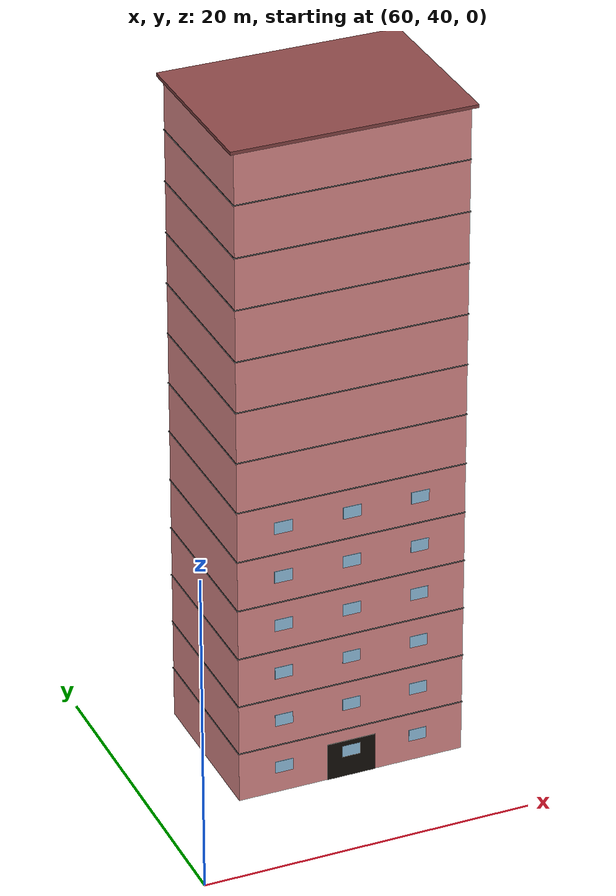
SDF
<sdf version="1.7">
 <world name="campus_regional">
  <model name="dormitory_4">
   <static>true</static>
   <pose>72.0 52.0 0 0 0 0</pose>
   <link name="body">
    <visual name="body">
     <pose>0 0 20.800 0 0 0</pose>
     <geometry><box><size>14.000 10.000 41.600</size></box></geometry>
     <material><ambient>0.920 0.580 0.580 1.000</ambient><diffuse>0.920 0.580 0.580 1.000</diffuse></material>
    </visual>
    <collision name="body_collision">
     <pose>0 0 20.800 0 0 0</pose>
     <geometry><box><size>14.000 10.000 41.600</size></box></geometry>
    </collision>
    <visual name="roof">
     <pose>0 0 41.700 0 0 0</pose>
     <geometry><box><size>14.600 10.600 0.200</size></box></geometry>
     <material><ambient>0.550 0.280 0.280 1.000</ambient><diffuse>0.550 0.280 0.280 1.000</diffuse></material>
    </visual>
    <visual name="floor_sep_n_1">
     <pose>0 5.018 3.200 0 0 0</pose>
     <geometry><box><size>14.100 0.035 0.060</size></box></geometry>
     <material><ambient>0.080 0.080 0.080 1.000</ambient><diffuse>0.080 0.080 0.080 1.000</diffuse></material>
    </visual>
    <visual name="floor_sep_s_1">
     <pose>0 -5.018 3.200 0 0 0</pose>
     <geometry><box><size>14.100 0.035 0.060</size></box></geometry>
     <material><ambient>0.080 0.080 0.080 1.000</ambient><diffuse>0.080 0.080 0.080 1.000</diffuse></material>
    </visual>
    <visual name="floor_sep_e_1">
     <pose>7.018 0 3.200 0 0 0</pose>
     <geometry><box><size>0.035 10.100 0.060</size></box></geometry>
     <material><ambient>0.080 0.080 0.080 1.000</ambient><diffuse>0.080 0.080 0.080 1.000</diffuse></material>
    </visual>
    <visual name="floor_sep_w_1">
     <pose>-7.018 0 3.200 0 0 0</pose>
     <geometry><box><size>0.035 10.100 0.060</size></box></geometry>
     <material><ambient>0.080 0.080 0.080 1.000</ambient><diffuse>0.080 0.080 0.080 1.000</diffuse></material>
    </visual>
    <visual name="floor_sep_n_2">
     <pose>0 5.018 6.400 0 0 0</pose>
     <geometry><box><size>14.100 0.035 0.060</size></box></geometry>
     <material><ambient>0.080 0.080 0.080 1.000</ambient><diffuse>0.080 0.080 0.080 1.000</diffuse></material>
    </visual>
    <visual name="floor_sep_s_2">
     <pose>0 -5.018 6.400 0 0 0</pose>
     <geometry><box><size>14.100 0.035 0.060</size></box></geometry>
     <material><ambient>0.080 0.080 0.080 1.000</ambient><diffuse>0.080 0.080 0.080 1.000</diffuse></material>
    </visual>
    <visual name="floor_sep_e_2">
     <pose>7.018 0 6.400 0 0 0</pose>
     <geometry><box><size>0.035 10.100 0.060</size></box></geometry>
     <material><ambient>0.080 0.080 0.080 1.000</ambient><diffuse>0.080 0.080 0.080 1.000</diffuse></material>
    </visual>
    <visual name="floor_sep_w_2">
     <pose>-7.018 0 6.400 0 0 0</pose>
     <geometry><box><size>0.035 10.100 0.060</size></box></geometry>
     <material><ambient>0.080 0.080 0.080 1.000</ambient><diffuse>0.080 0.080 0.080 1.000</diffuse></material>
    </visual>
    <visual name="floor_sep_n_3">
     <pose>0 5.018 9.600 0 0 0</pose>
     <geometry><box><size>14.100 0.035 0.060</size></box></geometry>
     <material><ambient>0.080 0.080 0.080 1.000</ambient><diffuse>0.080 0.080 0.080 1.000</diffuse></material>
    </visual>
    <visual name="floor_sep_s_3">
     <pose>0 -5.018 9.600 0 0 0</pose>
     <geometry><box><size>14.100 0.035 0.060</size></box></geometry>
     <material><ambient>0.080 0.080 0.080 1.000</ambient><diffuse>0.080 0.080 0.080 1.000</diffuse></material>
    </visual>
    <visual name="floor_sep_e_3">
     <pose>7.018 0 9.600 0 0 0</pose>
     <geometry><box><size>0.035 10.100 0.060</size></box></geometry>
     <material><ambient>0.080 0.080 0.080 1.000</ambient><diffuse>0.080 0.080 0.080 1.000</diffuse></material>
    </visual>
    <visual name="floor_sep_w_3">
     <pose>-7.018 0 9.600 0 0 0</pose>
     <geometry><box><size>0.035 10.100 0.060</size></box></geometry>
     <material><ambient>0.080 0.080 0.080 1.000</ambient><diffuse>0.080 0.080 0.080 1.000</diffuse></material>
    </visual>
    <visual name="floor_sep_n_4">
     <pose>0 5.018 12.800 0 0 0</pose>
     <geometry><box><size>14.100 0.035 0.060</size></box></geometry>
     <material><ambient>0.080 0.080 0.080 1.000</ambient><diffuse>0.080 0.080 0.080 1.000</diffuse></material>
    </visual>
    <visual name="floor_sep_s_4">
     <pose>0 -5.018 12.800 0 0 0</pose>
     <geometry><box><size>14.100 0.035 0.060</size></box></geometry>
     <material><ambient>0.080 0.080 0.080 1.000</ambient><diffuse>0.080 0.080 0.080 1.000</diffuse></material>
    </visual>
    <visual name="floor_sep_e_4">
     <pose>7.018 0 12.800 0 0 0</pose>
     <geometry><box><size>0.035 10.100 0.060</size></box></geometry>
     <material><ambient>0.080 0.080 0.080 1.000</ambient><diffuse>0.080 0.080 0.080 1.000</diffuse></material>
    </visual>
    <visual name="floor_sep_w_4">
     <pose>-7.018 0 12.800 0 0 0</pose>
     <geometry><box><size>0.035 10.100 0.060</size></box></geometry>
     <material><ambient>0.080 0.080 0.080 1.000</ambient><diffuse>0.080 0.080 0.080 1.000</diffuse></material>
    </visual>
    <visual name="floor_sep_n_5">
     <pose>0 5.018 16.000 0 0 0</pose>
     <geometry><box><size>14.100 0.035 0.060</size></box></geometry>
     <material><ambient>0.080 0.080 0.080 1.000</ambient><diffuse>0.080 0.080 0.080 1.000</diffuse></material>
    </visual>
    <visual name="floor_sep_s_5">
     <pose>0 -5.018 16.000 0 0 0</pose>
     <geometry><box><size>14.100 0.035 0.060</size></box></geometry>
     <material><ambient>0.080 0.080 0.080 1.000</ambient><diffuse>0.080 0.080 0.080 1.000</diffuse></material>
    </visual>
    <visual name="floor_sep_e_5">
     <pose>7.018 0 16.000 0 0 0</pose>
     <geometry><box><size>0.035 10.100 0.060</size></box></geometry>
     <material><ambient>0.080 0.080 0.080 1.000</ambient><diffuse>0.080 0.080 0.080 1.000</diffuse></material>
    </visual>
    <visual name="floor_sep_w_5">
     <pose>-7.018 0 16.000 0 0 0</pose>
     <geometry><box><size>0.035 10.100 0.060</size></box></geometry>
     <material><ambient>0.080 0.080 0.080 1.000</ambient><diffuse>0.080 0.080 0.080 1.000</diffuse></material>
    </visual>
    <visual name="floor_sep_n_6">
     <pose>0 5.018 19.200 0 0 0</pose>
     <geometry><box><size>14.100 0.035 0.060</size></box></geometry>
     <material><ambient>0.080 0.080 0.080 1.000</ambient><diffuse>0.080 0.080 0.080 1.000</diffuse></material>
    </visual>
    <visual name="floor_sep_s_6">
     <pose>0 -5.018 19.200 0 0 0</pose>
     <geometry><box><size>14.100 0.035 0.060</size></box></geometry>
     <material><ambient>0.080 0.080 0.080 1.000</ambient><diffuse>0.080 0.080 0.080 1.000</diffuse></material>
    </visual>
    <visual name="floor_sep_e_6">
     <pose>7.018 0 19.200 0 0 0</pose>
     <geometry><box><size>0.035 10.100 0.060</size></box></geometry>
     <material><ambient>0.080 0.080 0.080 1.000</ambient><diffuse>0.080 0.080 0.080 1.000</diffuse></material>
    </visual>
    <visual name="floor_sep_w_6">
     <pose>-7.018 0 19.200 0 0 0</pose>
     <geometry><box><size>0.035 10.100 0.060</size></box></geometry>
     <material><ambient>0.080 0.080 0.080 1.000</ambient><diffuse>0.080 0.080 0.080 1.000</diffuse></material>
    </visual>
    <visual name="floor_sep_n_7">
     <pose>0 5.018 22.400 0 0 0</pose>
     <geometry><box><size>14.100 0.035 0.060</size></box></geometry>
     <material><ambient>0.080 0.080 0.080 1.000</ambient><diffuse>0.080 0.080 0.080 1.000</diffuse></material>
    </visual>
    <visual name="floor_sep_s_7">
     <pose>0 -5.018 22.400 0 0 0</pose>
     <geometry><box><size>14.100 0.035 0.060</size></box></geometry>
     <material><ambient>0.080 0.080 0.080 1.000</ambient><diffuse>0.080 0.080 0.080 1.000</diffuse></material>
    </visual>
    <visual name="floor_sep_e_7">
     <pose>7.018 0 22.400 0 0 0</pose>
     <geometry><box><size>0.035 10.100 0.060</size></box></geometry>
     <material><ambient>0.080 0.080 0.080 1.000</ambient><diffuse>0.080 0.080 0.080 1.000</diffuse></material>
    </visual>
    <visual name="floor_sep_w_7">
     <pose>-7.018 0 22.400 0 0 0</pose>
     <geometry><box><size>0.035 10.100 0.060</size></box></geometry>
     <material><ambient>0.080 0.080 0.080 1.000</ambient><diffuse>0.080 0.080 0.080 1.000</diffuse></material>
    </visual>
    <visual name="floor_sep_n_8">
     <pose>0 5.018 25.600 0 0 0</pose>
     <geometry><box><size>14.100 0.035 0.060</size></box></geometry>
     <material><ambient>0.080 0.080 0.080 1.000</ambient><diffuse>0.080 0.080 0.080 1.000</diffuse></material>
    </visual>
    <visual name="floor_sep_s_8">
     <pose>0 -5.018 25.600 0 0 0</pose>
     <geometry><box><size>14.100 0.035 0.060</size></box></geometry>
     <material><ambient>0.080 0.080 0.080 1.000</ambient><diffuse>0.080 0.080 0.080 1.000</diffuse></material>
    </visual>
    <visual name="floor_sep_e_8">
     <pose>7.018 0 25.600 0 0 0</pose>
     <geometry><box><size>0.035 10.100 0.060</size></box></geometry>
     <material><ambient>0.080 0.080 0.080 1.000</ambient><diffuse>0.080 0.080 0.080 1.000</diffuse></material>
    </visual>
    <visual name="floor_sep_w_8">
     <pose>-7.018 0 25.600 0 0 0</pose>
     <geometry><box><size>0.035 10.100 0.060</size></box></geometry>
     <material><ambient>0.080 0.080 0.080 1.000</ambient><diffuse>0.080 0.080 0.080 1.000</diffuse></material>
    </visual>
    <visual name="floor_sep_n_9">
     <pose>0 5.018 28.800 0 0 0</pose>
     <geometry><box><size>14.100 0.035 0.060</size></box></geometry>
     <material><ambient>0.080 0.080 0.080 1.000</ambient><diffuse>0.080 0.080 0.080 1.000</diffuse></material>
    </visual>
    <visual name="floor_sep_s_9">
     <pose>0 -5.018 28.800 0 0 0</pose>
     <geometry><box><size>14.100 0.035 0.060</size></box></geometry>
     <material><ambient>0.080 0.080 0.080 1.000</ambient><diffuse>0.080 0.080 0.080 1.000</diffuse></material>
    </visual>
    <visual name="floor_sep_e_9">
     <pose>7.018 0 28.800 0 0 0</pose>
     <geometry><box><size>0.035 10.100 0.060</size></box></geometry>
     <material><ambient>0.080 0.080 0.080 1.000</ambient><diffuse>0.080 0.080 0.080 1.000</diffuse></material>
    </visual>
    <visual name="floor_sep_w_9">
     <pose>-7.018 0 28.800 0 0 0</pose>
     <geometry><box><size>0.035 10.100 0.060</size></box></geometry>
     <material><ambient>0.080 0.080 0.080 1.000</ambient><diffuse>0.080 0.080 0.080 1.000</diffuse></material>
    </visual>
    <visual name="floor_sep_n_10">
     <pose>0 5.018 32.000 0 0 0</pose>
     <geometry><box><size>14.100 0.035 0.060</size></box></geometry>
     <material><ambient>0.080 0.080 0.080 1.000</ambient><diffuse>0.080 0.080 0.080 1.000</diffuse></material>
    </visual>
    <visual name="floor_sep_s_10">
     <pose>0 -5.018 32.000 0 0 0</pose>
     <geometry><box><size>14.100 0.035 0.060</size></box></geometry>
     <material><ambient>0.080 0.080 0.080 1.000</ambient><diffuse>0.080 0.080 0.080 1.000</diffuse></material>
    </visual>
    <visual name="floor_sep_e_10">
     <pose>7.018 0 32.000 0 0 0</pose>
     <geometry><box><size>0.035 10.100 0.060</size></box></geometry>
     <material><ambient>0.080 0.080 0.080 1.000</ambient><diffuse>0.080 0.080 0.080 1.000</diffuse></material>
    </visual>
    <visual name="floor_sep_w_10">
     <pose>-7.018 0 32.000 0 0 0</pose>
     <geometry><box><size>0.035 10.100 0.060</size></box></geometry>
     <material><ambient>0.080 0.080 0.080 1.000</ambient><diffuse>0.080 0.080 0.080 1.000</diffuse></material>
    </visual>
    <visual name="floor_sep_n_11">
     <pose>0 5.018 35.200 0 0 0</pose>
     <geometry><box><size>14.100 0.035 0.060</size></box></geometry>
     <material><ambient>0.080 0.080 0.080 1.000</ambient><diffuse>0.080 0.080 0.080 1.000</diffuse></material>
    </visual>
    <visual name="floor_sep_s_11">
     <pose>0 -5.018 35.200 0 0 0</pose>
     <geometry><box><size>14.100 0.035 0.060</size></box></geometry>
     <material><ambient>0.080 0.080 0.080 1.000</ambient><diffuse>0.080 0.080 0.080 1.000</diffuse></material>
    </visual>
    <visual name="floor_sep_e_11">
     <pose>7.018 0 35.200 0 0 0</pose>
     <geometry><box><size>0.035 10.100 0.060</size></box></geometry>
     <material><ambient>0.080 0.080 0.080 1.000</ambient><diffuse>0.080 0.080 0.080 1.000</diffuse></material>
    </visual>
    <visual name="floor_sep_w_11">
     <pose>-7.018 0 35.200 0 0 0</pose>
     <geometry><box><size>0.035 10.100 0.060</size></box></geometry>
     <material><ambient>0.080 0.080 0.080 1.000</ambient><diffuse>0.080 0.080 0.080 1.000</diffuse></material>
    </visual>
    <visual name="floor_sep_n_12">
     <pose>0 5.018 38.400 0 0 0</pose>
     <geometry><box><size>14.100 0.035 0.060</size></box></geometry>
     <material><ambient>0.080 0.080 0.080 1.000</ambient><diffuse>0.080 0.080 0.080 1.000</diffuse></material>
    </visual>
    <visual name="floor_sep_s_12">
     <pose>0 -5.018 38.400 0 0 0</pose>
     <geometry><box><size>14.100 0.035 0.060</size></box></geometry>
     <material><ambient>0.080 0.080 0.080 1.000</ambient><diffuse>0.080 0.080 0.080 1.000</diffuse></material>
    </visual>
    <visual name="floor_sep_e_12">
     <pose>7.018 0 38.400 0 0 0</pose>
     <geometry><box><size>0.035 10.100 0.060</size></box></geometry>
     <material><ambient>0.080 0.080 0.080 1.000</ambient><diffuse>0.080 0.080 0.080 1.000</diffuse></material>
    </visual>
    <visual name="floor_sep_w_12">
     <pose>-7.018 0 38.400 0 0 0</pose>
     <geometry><box><size>0.035 10.100 0.060</size></box></geometry>
     <material><ambient>0.080 0.080 0.080 1.000</ambient><diffuse>0.080 0.080 0.080 1.000</diffuse></material>
    </visual>
    <visual name="front_door">
     <pose>0 -5.012 1.2 0 0 0</pose>
     <geometry><box><size>3.000 0.050 2.400</size></box></geometry>
     <material><ambient>0.080 0.060 0.040 1.000</ambient><diffuse>0.080 0.060 0.040 1.000</diffuse></material>
    </visual>
    <visual name="win_n_1_-4.2">
     <pose>-4.200 5.020 1.700 0 0 0</pose>
     <geometry><box><size>1.100 0.035 0.750</size></box></geometry>
     <material><ambient>0.620 0.820 0.950 1.000</ambient><diffuse>0.620 0.820 0.950 1.000</diffuse></material>
    </visual>
    <visual name="win_s_1_-4.2">
     <pose>-4.200 -5.020 1.700 0 0 0</pose>
     <geometry><box><size>1.100 0.035 0.750</size></box></geometry>
     <material><ambient>0.620 0.820 0.950 1.000</ambient><diffuse>0.620 0.820 0.950 1.000</diffuse></material>
    </visual>
    <visual name="win_n_1_0.0">
     <pose>0.000 5.020 1.700 0 0 0</pose>
     <geometry><box><size>1.100 0.035 0.750</size></box></geometry>
     <material><ambient>0.620 0.820 0.950 1.000</ambient><diffuse>0.620 0.820 0.950 1.000</diffuse></material>
    </visual>
    <visual name="win_s_1_0.0">
     <pose>0.000 -5.020 1.700 0 0 0</pose>
     <geometry><box><size>1.100 0.035 0.750</size></box></geometry>
     <material><ambient>0.620 0.820 0.950 1.000</ambient><diffuse>0.620 0.820 0.950 1.000</diffuse></material>
    </visual>
    <visual name="win_n_1_4.2">
     <pose>4.200 5.020 1.700 0 0 0</pose>
     <geometry><box><size>1.100 0.035 0.750</size></box></geometry>
     <material><ambient>0.620 0.820 0.950 1.000</ambient><diffuse>0.620 0.820 0.950 1.000</diffuse></material>
    </visual>
    <visual name="win_s_1_4.2">
     <pose>4.200 -5.020 1.700 0 0 0</pose>
     <geometry><box><size>1.100 0.035 0.750</size></box></geometry>
     <material><ambient>0.620 0.820 0.950 1.000</ambient><diffuse>0.620 0.820 0.950 1.000</diffuse></material>
    </visual>
    <visual name="win_n_2_-4.2">
     <pose>-4.200 5.020 4.900 0 0 0</pose>
     <geometry><box><size>1.100 0.035 0.750</size></box></geometry>
     <material><ambient>0.620 0.820 0.950 1.000</ambient><diffuse>0.620 0.820 0.950 1.000</diffuse></material>
    </visual>
    <visual name="win_s_2_-4.2">
     <pose>-4.200 -5.020 4.900 0 0 0</pose>
     <geometry><box><size>1.100 0.035 0.750</size></box></geometry>
     <material><ambient>0.620 0.820 0.950 1.000</ambient><diffuse>0.620 0.820 0.950 1.000</diffuse></material>
    </visual>
    <visual name="win_n_2_0.0">
     <pose>0.000 5.020 4.900 0 0 0</pose>
     <geometry><box><size>1.100 0.035 0.750</size></box></geometry>
     <material><ambient>0.620 0.820 0.950 1.000</ambient><diffuse>0.620 0.820 0.950 1.000</diffuse></material>
    </visual>
    <visual name="win_s_2_0.0">
     <pose>0.000 -5.020 4.900 0 0 0</pose>
     <geometry><box><size>1.100 0.035 0.750</size></box></geometry>
     <material><ambient>0.620 0.820 0.950 1.000</ambient><diffuse>0.620 0.820 0.950 1.000</diffuse></material>
    </visual>
    <visual name="win_n_2_4.2">
     <pose>4.200 5.020 4.900 0 0 0</pose>
     <geometry><box><size>1.100 0.035 0.750</size></box></geometry>
     <material><ambient>0.620 0.820 0.950 1.000</ambient><diffuse>0.620 0.820 0.950 1.000</diffuse></material>
    </visual>
    <visual name="win_s_2_4.2">
     <pose>4.200 -5.020 4.900 0 0 0</pose>
     <geometry><box><size>1.100 0.035 0.750</size></box></geometry>
     <material><ambient>0.620 0.820 0.950 1.000</ambient><diffuse>0.620 0.820 0.950 1.000</diffuse></material>
    </visual>
    <visual name="win_n_3_-4.2">
     <pose>-4.200 5.020 8.100 0 0 0</pose>
     <geometry><box><size>1.100 0.035 0.750</size></box></geometry>
     <material><ambient>0.620 0.820 0.950 1.000</ambient><diffuse>0.620 0.820 0.950 1.000</diffuse></material>
    </visual>
    <visual name="win_s_3_-4.2">
     <pose>-4.200 -5.020 8.100 0 0 0</pose>
     <geometry><box><size>1.100 0.035 0.750</size></box></geometry>
     <material><ambient>0.620 0.820 0.950 1.000</ambient><diffuse>0.620 0.820 0.950 1.000</diffuse></material>
    </visual>
    <visual name="win_n_3_0.0">
     <pose>0.000 5.020 8.100 0 0 0</pose>
     <geometry><box><size>1.100 0.035 0.750</size></box></geometry>
     <material><ambient>0.620 0.820 0.950 1.000</ambient><diffuse>0.620 0.820 0.950 1.000</diffuse></material>
    </visual>
    <visual name="win_s_3_0.0">
     <pose>0.000 -5.020 8.100 0 0 0</pose>
     <geometry><box><size>1.100 0.035 0.750</size></box></geometry>
     <material><ambient>0.620 0.820 0.950 1.000</ambient><diffuse>0.620 0.820 0.950 1.000</diffuse></material>
    </visual>
    <visual name="win_n_3_4.2">
     <pose>4.200 5.020 8.100 0 0 0</pose>
     <geometry><box><size>1.100 0.035 0.750</size></box></geometry>
     <material><ambient>0.620 0.820 0.950 1.000</ambient><diffuse>0.620 0.820 0.950 1.000</diffuse></material>
    </visual>
    <visual name="win_s_3_4.2">
     <pose>4.200 -5.020 8.100 0 0 0</pose>
     <geometry><box><size>1.100 0.035 0.750</size></box></geometry>
     <material><ambient>0.620 0.820 0.950 1.000</ambient><diffuse>0.620 0.820 0.950 1.000</diffuse></material>
    </visual>
    <visual name="win_n_4_-4.2">
     <pose>-4.200 5.020 11.300 0 0 0</pose>
     <geometry><box><size>1.100 0.035 0.750</size></box></geometry>
     <material><ambient>0.620 0.820 0.950 1.000</ambient><diffuse>0.620 0.820 0.950 1.000</diffuse></material>
    </visual>
    <visual name="win_s_4_-4.2">
     <pose>-4.200 -5.020 11.300 0 0 0</pose>
     <geometry><box><size>1.100 0.035 0.750</size></box></geometry>
     <material><ambient>0.620 0.820 0.950 1.000</ambient><diffuse>0.620 0.820 0.950 1.000</diffuse></material>
    </visual>
    <visual name="win_n_4_0.0">
     <pose>0.000 5.020 11.300 0 0 0</pose>
     <geometry><box><size>1.100 0.035 0.750</size></box></geometry>
     <material><ambient>0.620 0.820 0.950 1.000</ambient><diffuse>0.620 0.820 0.950 1.000</diffuse></material>
    </visual>
    <visual name="win_s_4_0.0">
     <pose>0.000 -5.020 11.300 0 0 0</pose>
     <geometry><box><size>1.100 0.035 0.750</size></box></geometry>
     <material><ambient>0.620 0.820 0.950 1.000</ambient><diffuse>0.620 0.820 0.950 1.000</diffuse></material>
    </visual>
    <visual name="win_n_4_4.2">
     <pose>4.200 5.020 11.300 0 0 0</pose>
     <geometry><box><size>1.100 0.035 0.750</size></box></geometry>
     <material><ambient>0.620 0.820 0.950 1.000</ambient><diffuse>0.620 0.820 0.950 1.000</diffuse></material>
    </visual>
    <visual name="win_s_4_4.2">
     <pose>4.200 -5.020 11.300 0 0 0</pose>
     <geometry><box><size>1.100 0.035 0.750</size></box></geometry>
     <material><ambient>0.620 0.820 0.950 1.000</ambient><diffuse>0.620 0.820 0.950 1.000</diffuse></material>
    </visual>
    <visual name="win_n_5_-4.2">
     <pose>-4.200 5.020 14.500 0 0 0</pose>
     <geometry><box><size>1.100 0.035 0.750</size></box></geometry>
     <material><ambient>0.620 0.820 0.950 1.000</ambient><diffuse>0.620 0.820 0.950 1.000</diffuse></material>
    </visual>
    <visual name="win_s_5_-4.2">
     <pose>-4.200 -5.020 14.500 0 0 0</pose>
     <geometry><box><size>1.100 0.035 0.750</size></box></geometry>
     <material><ambient>0.620 0.820 0.950 1.000</ambient><diffuse>0.620 0.820 0.950 1.000</diffuse></material>
    </visual>
    <visual name="win_n_5_0.0">
     <pose>0.000 5.020 14.500 0 0 0</pose>
     <geometry><box><size>1.100 0.035 0.750</size></box></geometry>
     <material><ambient>0.620 0.820 0.950 1.000</ambient><diffuse>0.620 0.820 0.950 1.000</diffuse></material>
    </visual>
    <visual name="win_s_5_0.0">
     <pose>0.000 -5.020 14.500 0 0 0</pose>
     <geometry><box><size>1.100 0.035 0.750</size></box></geometry>
     <material><ambient>0.620 0.820 0.950 1.000</ambient><diffuse>0.620 0.820 0.950 1.000</diffuse></material>
    </visual>
    <visual name="win_n_5_4.2">
     <pose>4.200 5.020 14.500 0 0 0</pose>
     <geometry><box><size>1.100 0.035 0.750</size></box></geometry>
     <material><ambient>0.620 0.820 0.950 1.000</ambient><diffuse>0.620 0.820 0.950 1.000</diffuse></material>
    </visual>
    <visual name="win_s_5_4.2">
     <pose>4.200 -5.020 14.500 0 0 0</pose>
     <geometry><box><size>1.100 0.035 0.750</size></box></geometry>
     <material><ambient>0.620 0.820 0.950 1.000</ambient><diffuse>0.620 0.820 0.950 1.000</diffuse></material>
    </visual>
    <visual name="win_n_6_-4.2">
     <pose>-4.200 5.020 17.700 0 0 0</pose>
     <geometry><box><size>1.100 0.035 0.750</size></box></geometry>
     <material><ambient>0.620 0.820 0.950 1.000</ambient><diffuse>0.620 0.820 0.950 1.000</diffuse></material>
    </visual>
    <visual name="win_s_6_-4.2">
     <pose>-4.200 -5.020 17.700 0 0 0</pose>
     <geometry><box><size>1.100 0.035 0.750</size></box></geometry>
     <material><ambient>0.620 0.820 0.950 1.000</ambient><diffuse>0.620 0.820 0.950 1.000</diffuse></material>
    </visual>
    <visual name="win_n_6_0.0">
     <pose>0.000 5.020 17.700 0 0 0</pose>
     <geometry><box><size>1.100 0.035 0.750</size></box></geometry>
     <material><ambient>0.620 0.820 0.950 1.000</ambient><diffuse>0.620 0.820 0.950 1.000</diffuse></material>
    </visual>
    <visual name="win_s_6_0.0">
     <pose>0.000 -5.020 17.700 0 0 0</pose>
     <geometry><box><size>1.100 0.035 0.750</size></box></geometry>
     <material><ambient>0.620 0.820 0.950 1.000</ambient><diffuse>0.620 0.820 0.950 1.000</diffuse></material>
    </visual>
    <visual name="win_n_6_4.2">
     <pose>4.200 5.020 17.700 0 0 0</pose>
     <geometry><box><size>1.100 0.035 0.750</size></box></geometry>
     <material><ambient>0.620 0.820 0.950 1.000</ambient><diffuse>0.620 0.820 0.950 1.000</diffuse></material>
    </visual>
    <visual name="win_s_6_4.2">
     <pose>4.200 -5.020 17.700 0 0 0</pose>
     <geometry><box><size>1.100 0.035 0.750</size></box></geometry>
     <material><ambient>0.620 0.820 0.950 1.000</ambient><diffuse>0.620 0.820 0.950 1.000</diffuse></material>
    </visual>
   </link>
  </model>
 </world>
</sdf>
